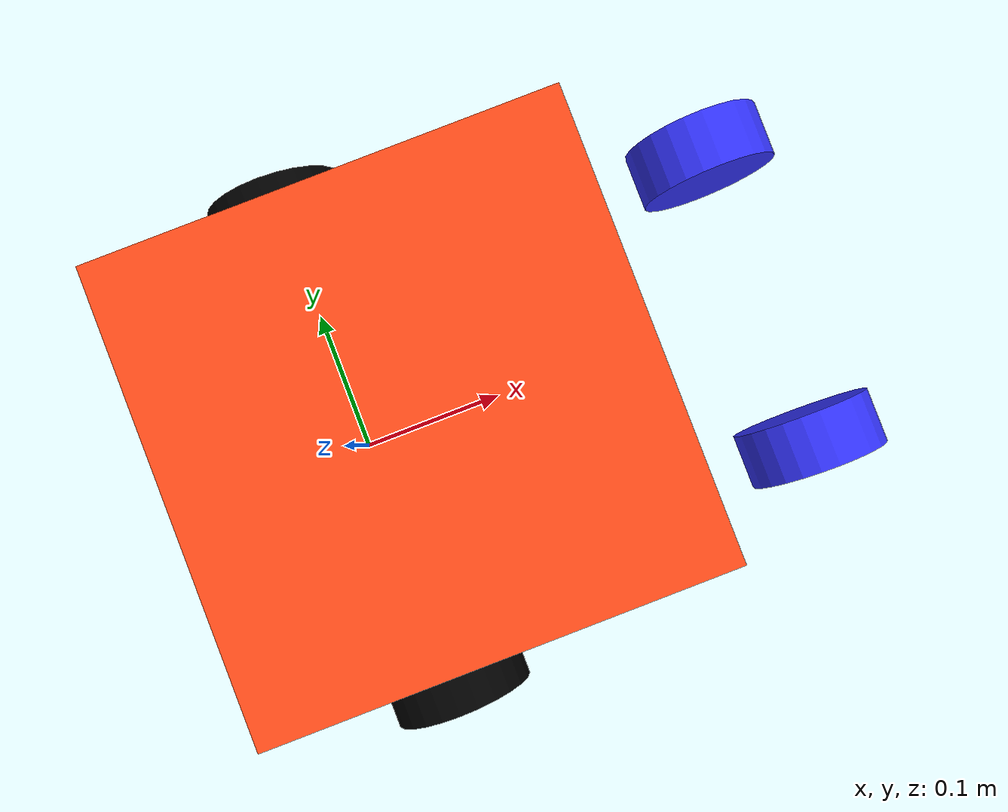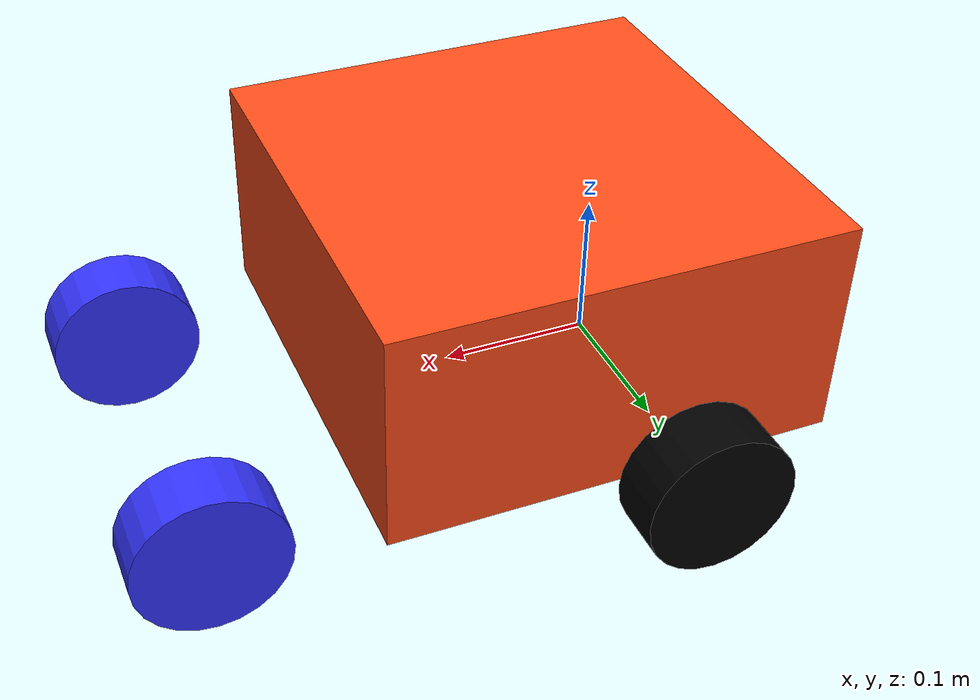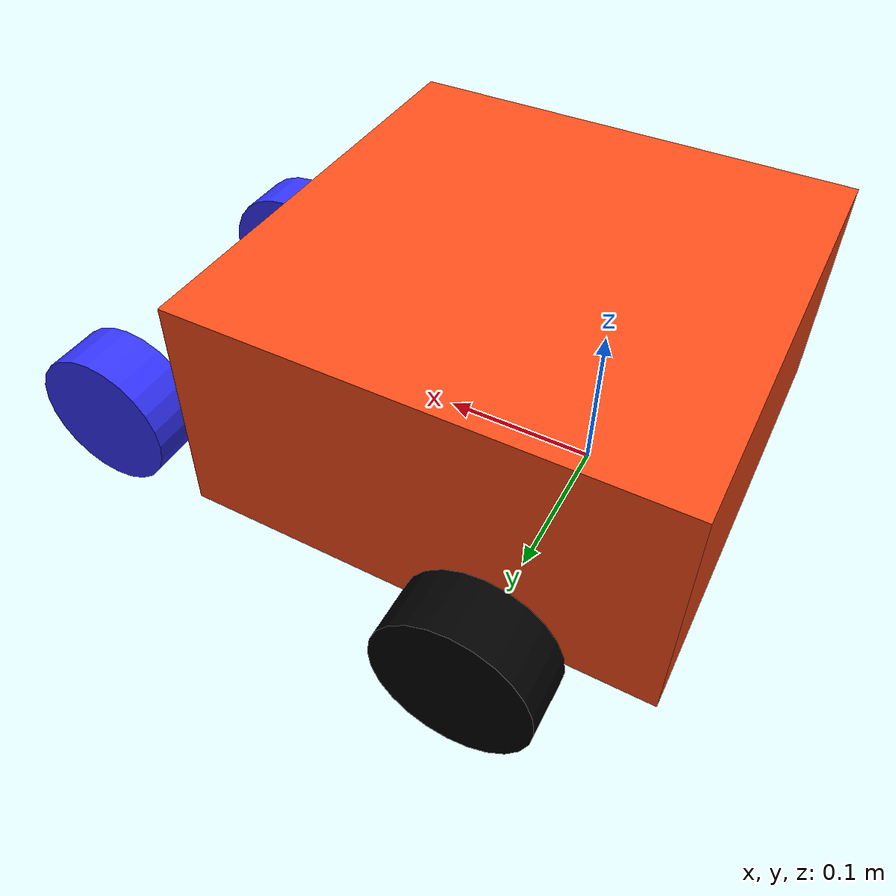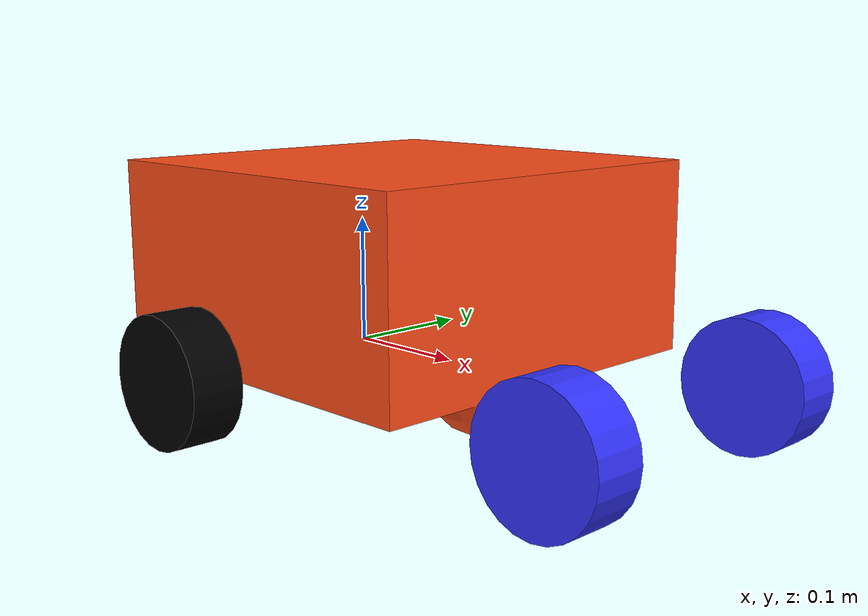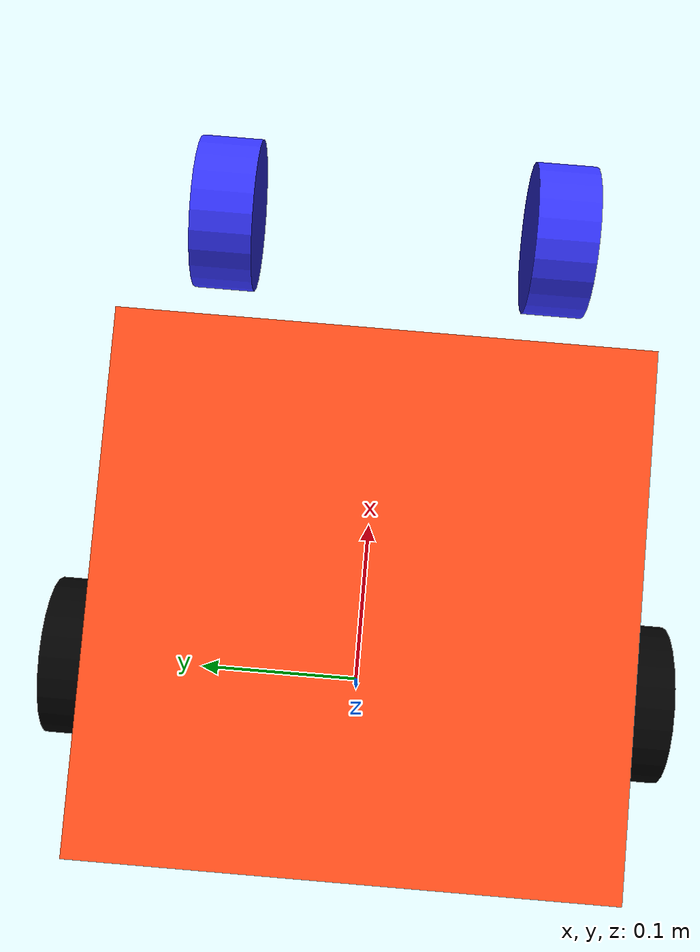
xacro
<?xml version="1.0"?>
<robot xmlns:xacro="http://www.ros.org/wiki/xacro" >

    <xacro:include filename="inertial_macros.xacro"/>

    <material name="white">
        <color rgba="1 1 1 1" />
    </material>

    <material name="orange">
        <color rgba="1 0.3 0.1 1"/>
    </material>

    <material name="blue">
        <color rgba="0.2 0.2 1 1"/>
    </material>

    <material name="black">
        <color rgba="0 0 0 1"/>
    </material>

    <!-- BASE LINK -->

    <link name="base_link">

    </link>

    <!-- CHASSIS LINK -->

    <joint name="chassis_joint" type="fixed">
        <parent link="base_link"/>
        <child link="chassis"/>
        <origin xyz="-0.1 0 0"/>
    </joint>

    <link name="chassis">
        <visual>
            <origin xyz="0.15 0 0.075"/>
            <geometry>
                <box size="0.3 0.3 0.15"/>
            </geometry>
            <material name="orange"/>
        </visual>
        <collision>
            <origin xyz="0.15 0 0.075"/>
            <geometry>
                <box size="0.3 0.3 0.15"/>
            </geometry>
        </collision>
        <xacro:inertial_box mass="0.5" x="0.3" y="0.3" z="0.15">
            <origin xyz="0.15 0 0.075" rpy="0 0 0"/>
        </xacro:inertial_box>
    </link>

    <gazebo reference="chassis">
        <material>Gazebo/Orange</material>
    </gazebo>

    <!-- LEFT WHEEL LINK -->

    <joint name="left_wheel_joint" type="continuous">
        <parent link="base_link"/>
        <child link="left_wheel"/>
        <origin xyz="0 0.175 0" rpy="-${pi/2} 0 0" />
        <axis xyz="0 0 1"/>
    </joint>

    <link name="left_wheel">
        <visual>
            <geometry>
                <cylinder radius="0.05" length="0.04"/>
            </geometry>
            <material name="black"/>
        </visual>
        <collision>
            <geometry>
                <cylinder radius="0.05" length="0.04"/>
            </geometry>
        </collision>
        <xacro:inertial_cylinder mass="0.1" length="0.04" radius="0.05">
            <origin xyz="0 0 0" rpy="0 0 0"/>
        </xacro:inertial_cylinder>
    </link>

    <gazebo reference="left_wheel">
        <material>Gazebo/Black</material>
    </gazebo>

    <!-- RIGHT WHEEL LINK -->

    <joint name="right_wheel_joint" type="continuous">
        <parent link="base_link"/>
        <child link="right_wheel"/>
        <origin xyz="0 -0.175 0" rpy="${pi/2} 0 0" />
        <axis xyz="0 0 -1"/>
    </joint>

    <link name="right_wheel">
        <visual>
            <geometry>
                <cylinder radius="0.05" length="0.04"/>
            </geometry>
            <material name="black"/>
        </visual>
        <collision>
            <geometry>
                <cylinder radius="0.05" length="0.04"/>
            </geometry>
        </collision>
        <xacro:inertial_cylinder mass="0.1" length="0.04" radius="0.05">
            <origin xyz="0 0 0" rpy="0 0 0"/>
        </xacro:inertial_cylinder>
    </link>

    <gazebo reference="right_wheel">
        <material>Gazebo/Black</material>
    </gazebo>

    <!-- LEFT front WHEEL LINK -->

    <joint name="left_front_wheel_joint" type="continuous">
        <parent link="base_link"/>
        <child link="left_front_wheel"/>
        <origin xyz="0.3 0.11 0" rpy="-${pi/2} 0 0" />
        <axis xyz="0 0 1"/>
    </joint>

    <link name="left_front_wheel">
        <visual>
            <geometry>
                <cylinder radius="0.05" length="0.04"/>
            </geometry>
            <material name="blue"/>
        </visual>
        <collision>
            <geometry>
                <cylinder radius="0.05" length="0.04"/>
            </geometry>
        </collision>
        <xacro:inertial_cylinder mass="0.1" length="0.04" radius="0.05">
            <origin xyz="0 0 0" rpy="0 0 0"/>
        </xacro:inertial_cylinder>
    </link>

    <gazebo reference="left_front_wheel">
        <material>Gazebo/Black</material>
    </gazebo>

    <!-- RIGHT FRONT WHEEL LINK -->

    <joint name="right_front_wheel_joint" type="continuous">
        <parent link="base_link"/>
        <child link="right_front_wheel"/>
        <origin xyz="0.3 -0.11 0" rpy="${pi/2} 0 0" />
        <axis xyz="0 0 -1"/>
    </joint>

    <link name="right_front_wheel">
        <visual>
            <geometry>
                <cylinder radius="0.05" length="0.04"/>
            </geometry>
            <material name="blue"/>
        </visual>
        <collision>
            <geometry>
                <cylinder radius="0.05" length="0.04"/>
            </geometry>
        </collision>
        <xacro:inertial_cylinder mass="0.1" length="0.04" radius="0.05">
            <origin xyz="0 0 0" rpy="0 0 0"/>
        </xacro:inertial_cylinder>
    </link>

    <gazebo reference="right_front_wheel">
        <material>Gazebo/Black</material>
    </gazebo>

    <!-- CASTER WHEEL LINK -->

    <joint name="caster_wheel_joint" type="fixed">
        <parent link="chassis"/>
        <child link="caster_wheel"/>
        <origin xyz="0.24 0 0"/>
    </joint>

    <link name="caster_wheel">
        <visual>
            <geometry>
                <sphere radius="0.05"/>
            </geometry>
            <material name="orange"/>
        </visual>
        <collision>
            <geometry>
                <sphere radius="0.05"/>
            </geometry>
        </collision>
        <xacro:inertial_sphere mass="0.1" radius="0.05">
            <origin xyz="0 0 0" rpy="0 0 0"/>
        </xacro:inertial_sphere>
    </link>

    <gazebo reference="caster_wheel">
        <material>Gazebo/Orange</material>
        <mu1 value="0.001"/>
        <mu2 value="0.001"/>
    </gazebo>

</robot>
